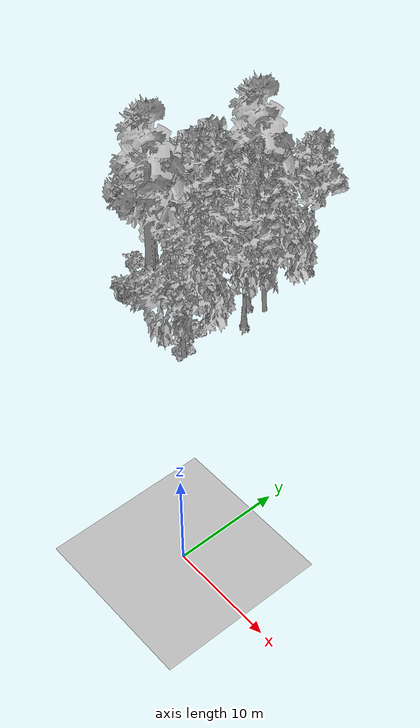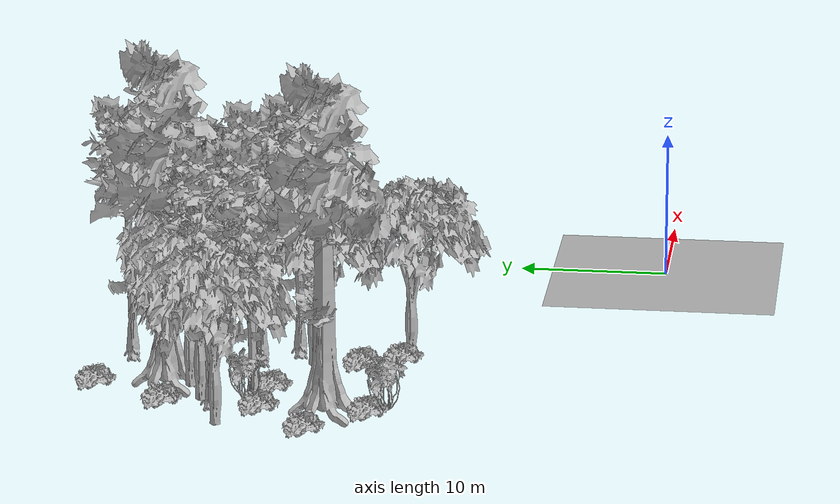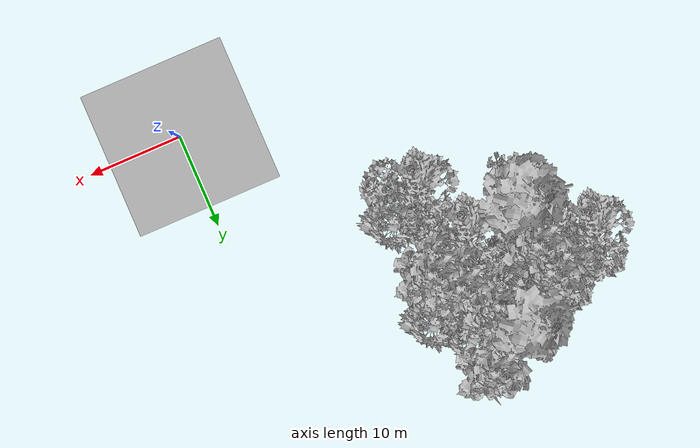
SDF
<sdf version="1.7">
 <world name="default">
  <model name="ground_plane">
   <static>1</static>
   <link name="link">
    <collision name="collision">
     <geometry><plane><normal>0 0 1</normal><size>70 70</size></plane></geometry>
     <surface><contact><ode><min_depth>0.01</min_depth><max_vel>0</max_vel></ode></contact></surface>
    </collision>
    <visual name="grass">
     <cast_shadows>0</cast_shadows>
     <geometry>
      <mesh>
       <scale>0.29000000000000004 0.29000000000000004 0.1</scale>
       <uri>file://grass_plane/meshes/grass_plane.dae</uri>
      </mesh>
     </geometry>
    </visual>
   </link>
  </model>
  <model name="Tree 2">
   <static>1</static>
   <pose>-17.93707764458719 22.777348619275365 0 1.57079 -0 0</pose>
   <link name="link">
    <collision name="collision">
     <geometry><mesh><scale>5 5 5</scale><uri>model://tree_9/meshes/tree_9.obj</uri></mesh></geometry>
    </collision>
    <visual name="visual">
     <geometry><mesh><scale>5 5 5</scale><uri>model://tree_9/meshes/tree_9.obj</uri></mesh></geometry>
    </visual>
   </link>
  </model>
  <model name="Tree 10">
   <static>1</static>
   <pose>-22.98953939201972 28.32693373725268 0 1.57079 -0 0</pose>
   <link name="link">
    <collision name="collision">
     <geometry><mesh><scale>5 5 5</scale><uri>model://tree_9/meshes/tree_9.obj</uri></mesh></geometry>
    </collision>
    <visual name="visual">
     <geometry><mesh><scale>5 5 5</scale><uri>model://tree_9/meshes/tree_9.obj</uri></mesh></geometry>
    </visual>
   </link>
  </model>
  <model name="Tree 19">
   <static>1</static>
   <pose>-24.71759503659493 30.340612021145517 0 1.57079 -0 0</pose>
   <link name="link">
    <collision name="collision">
     <geometry><mesh><scale>5 5 5</scale><uri>model://tree_4/meshes/tree_4.obj</uri></mesh></geometry>
    </collision>
    <visual name="visual">
     <geometry><mesh><scale>5 5 5</scale><uri>model://tree_4/meshes/tree_4.obj</uri></mesh></geometry>
    </visual>
   </link>
  </model>
  <model name="Tree 47">
   <static>1</static>
   <pose>-21.384829965945492 28.53131384593688 0 1.57079 -0 0</pose>
   <link name="link">
    <collision name="collision">
     <geometry><mesh><scale>5 5 5</scale><uri>model://tree_2/meshes/tree_2.obj</uri></mesh></geometry>
    </collision>
    <visual name="visual">
     <geometry><mesh><scale>5 5 5</scale><uri>model://tree_2/meshes/tree_2.obj</uri></mesh></geometry>
    </visual>
   </link>
  </model>
  <model name="Tree 86">
   <static>1</static>
   <pose>-26.118135639731616 28.59913634437875 0 1.57079 -0 0</pose>
   <link name="link">
    <collision name="collision">
     <geometry><mesh><scale>5 5 5</scale><uri>model://tree_2/meshes/tree_2.obj</uri></mesh></geometry>
    </collision>
    <visual name="visual">
     <geometry><mesh><scale>5 5 5</scale><uri>model://tree_2/meshes/tree_2.obj</uri></mesh></geometry>
    </visual>
   </link>
  </model>
  <model name="Tree 88">
   <static>1</static>
   <pose>-28.104582553090857 24.215981454329196 0 1.57079 -0 0</pose>
   <link name="link">
    <collision name="collision">
     <geometry><mesh><scale>5 5 5</scale><uri>model://tree_9/meshes/tree_9.obj</uri></mesh></geometry>
    </collision>
    <visual name="visual">
     <geometry><mesh><scale>5 5 5</scale><uri>model://tree_9/meshes/tree_9.obj</uri></mesh></geometry>
    </visual>
   </link>
  </model>
  <model name="Tree 92">
   <static>1</static>
   <pose>-28.23565608901808 27.005149878652148 0 1.57079 -0 0</pose>
   <link name="link">
    <collision name="collision">
     <geometry><mesh><scale>5 5 5</scale><uri>model://tree_9/meshes/tree_9.obj</uri></mesh></geometry>
    </collision>
    <visual name="visual">
     <geometry><mesh><scale>5 5 5</scale><uri>model://tree_9/meshes/tree_9.obj</uri></mesh></geometry>
    </visual>
   </link>
  </model>
  <model name="Tree 101">
   <static>1</static>
   <pose>-22.542150173858634 28.0002652658699 0 1.57079 -0 0</pose>
   <link name="link">
    <collision name="collision">
     <geometry><mesh><scale>5 5 5</scale><uri>model://tree_9/meshes/tree_9.obj</uri></mesh></geometry>
    </collision>
    <visual name="visual">
     <geometry><mesh><scale>5 5 5</scale><uri>model://tree_9/meshes/tree_9.obj</uri></mesh></geometry>
    </visual>
   </link>
  </model>
  <model name="Tree 117">
   <static>1</static>
   <pose>-21.339151955163654 21.356797105515135 0 1.57079 -0 0</pose>
   <link name="link">
    <collision name="collision">
     <geometry><mesh><scale>5 5 5</scale><uri>model://tree_2/meshes/tree_2.obj</uri></mesh></geometry>
    </collision>
    <visual name="visual">
     <geometry><mesh><scale>5 5 5</scale><uri>model://tree_2/meshes/tree_2.obj</uri></mesh></geometry>
    </visual>
   </link>
  </model>
  <model name="Tree 141">
   <static>1</static>
   <pose>-18.41906962036646 25.847872470304367 0 1.57079 -0 0</pose>
   <link name="link">
    <collision name="collision">
     <geometry><mesh><scale>5 5 5</scale><uri>model://tree_2/meshes/tree_2.obj</uri></mesh></geometry>
    </collision>
    <visual name="visual">
     <geometry><mesh><scale>5 5 5</scale><uri>model://tree_2/meshes/tree_2.obj</uri></mesh></geometry>
    </visual>
   </link>
  </model>
  <model name="Tree 143">
   <static>1</static>
   <pose>-19.714417248176826 33.604616361394804 0 1.57079 -0 0</pose>
   <link name="link">
    <collision name="collision">
     <geometry><mesh><scale>5 5 5</scale><uri>model://tree_9/meshes/tree_9.obj</uri></mesh></geometry>
    </collision>
    <visual name="visual">
     <geometry><mesh><scale>5 5 5</scale><uri>model://tree_9/meshes/tree_9.obj</uri></mesh></geometry>
    </visual>
   </link>
  </model>
  <model name="Tree 147">
   <static>1</static>
   <pose>-32.793482996314566 25.84687538786872 0 1.57079 -0 0</pose>
   <link name="link">
    <collision name="collision">
     <geometry><mesh><scale>5 5 5</scale><uri>model://tree_2/meshes/tree_2.obj</uri></mesh></geometry>
    </collision>
    <visual name="visual">
     <geometry><mesh><scale>5 5 5</scale><uri>model://tree_2/meshes/tree_2.obj</uri></mesh></geometry>
    </visual>
   </link>
  </model>
  <model name="Tree 170">
   <static>1</static>
   <pose>-28.530520965556615 27.523187434017572 0 1.57079 -0 0</pose>
   <link name="link">
    <collision name="collision">
     <geometry><mesh><scale>5 5 5</scale><uri>model://tree_2/meshes/tree_2.obj</uri></mesh></geometry>
    </collision>
    <visual name="visual">
     <geometry><mesh><scale>5 5 5</scale><uri>model://tree_2/meshes/tree_2.obj</uri></mesh></geometry>
    </visual>
   </link>
  </model>
  <model name="Tree 203">
   <static>1</static>
   <pose>-18.64307677617183 15.357441950081338 0 1.57079 -0 0</pose>
   <link name="link">
    <collision name="collision">
     <geometry><mesh><scale>5 5 5</scale><uri>model://tree_2/meshes/tree_2.obj</uri></mesh></geometry>
    </collision>
    <visual name="visual">
     <geometry><mesh><scale>5 5 5</scale><uri>model://tree_2/meshes/tree_2.obj</uri></mesh></geometry>
    </visual>
   </link>
  </model>
  <model name="Tree 207">
   <static>1</static>
   <pose>-19.857202393766165 24.997490572496915 0 1.57079 -0 0</pose>
   <link name="link">
    <collision name="collision">
     <geometry><mesh><scale>5 5 5</scale><uri>model://tree_9/meshes/tree_9.obj</uri></mesh></geometry>
    </collision>
    <visual name="visual">
     <geometry><mesh><scale>5 5 5</scale><uri>model://tree_9/meshes/tree_9.obj</uri></mesh></geometry>
    </visual>
   </link>
  </model>
  <model name="Tree 227">
   <static>1</static>
   <pose>-28.791225338494737 19.52128708060755 0 1.57079 -0 0</pose>
   <link name="link">
    <collision name="collision">
     <geometry><mesh><scale>5 5 5</scale><uri>model://tree_4/meshes/tree_4.obj</uri></mesh></geometry>
    </collision>
    <visual name="visual">
     <geometry><mesh><scale>5 5 5</scale><uri>model://tree_4/meshes/tree_4.obj</uri></mesh></geometry>
    </visual>
   </link>
  </model>
  <model name="Bush 0">
   <static>1</static>
   <pose>-25.9839728071737 34.8435579533206 0 1.57079 -0 0</pose>
   <link name="link">
    <collision name="collision">
     <geometry><mesh><scale>2 2 2</scale><uri>model://bush_2/meshes/bush_2.obj</uri></mesh></geometry>
    </collision>
    <visual name="visual">
     <geometry><mesh><scale>5 5 5</scale><uri>model://bush_2/meshes/bush_2.obj</uri></mesh></geometry>
    </visual>
   </link>
  </model>
  <model name="Bush 2">
   <static>1</static>
   <pose>-28.88197566760691 29.990762699969267 0 1.57079 -0 0</pose>
   <link name="link">
    <collision name="collision">
     <geometry><mesh><scale>2 2 2</scale><uri>model://bush_2/meshes/bush_2.obj</uri></mesh></geometry>
    </collision>
    <visual name="visual">
     <geometry><mesh><scale>5 5 5</scale><uri>model://bush_2/meshes/bush_2.obj</uri></mesh></geometry>
    </visual>
   </link>
  </model>
  <model name="Bush 8">
   <static>1</static>
   <pose>-19.485024495906373 15.781370845274658 0 1.57079 -0 0</pose>
   <link name="link">
    <collision name="collision">
     <geometry><mesh><scale>2 2 2</scale><uri>model://bush_2/meshes/bush_2.obj</uri></mesh></geometry>
    </collision>
    <visual name="visual">
     <geometry><mesh><scale>5 5 5</scale><uri>model://bush_2/meshes/bush_2.obj</uri></mesh></geometry>
    </visual>
   </link>
  </model>
  <model name="Bush 13">
   <static>1</static>
   <pose>-29.61148625348517 16.732022573516495 0 1.57079 -0 0</pose>
   <link name="link">
    <collision name="collision">
     <geometry><mesh><scale>2 2 2</scale><uri>model://bush_2/meshes/bush_2.obj</uri></mesh></geometry>
    </collision>
    <visual name="visual">
     <geometry><mesh><scale>5 5 5</scale><uri>model://bush_2/meshes/bush_2.obj</uri></mesh></geometry>
    </visual>
   </link>
  </model>
  <model name="Bush 36">
   <static>1</static>
   <pose>-29.396606073740607 23.691116621793142 0 1.57079 -0 0</pose>
   <link name="link">
    <collision name="collision">
     <geometry><mesh><scale>2 2 2</scale><uri>model://bush_2/meshes/bush_2.obj</uri></mesh></geometry>
    </collision>
    <visual name="visual">
     <geometry><mesh><scale>5 5 5</scale><uri>model://bush_2/meshes/bush_2.obj</uri></mesh></geometry>
    </visual>
   </link>
  </model>
  <model name="Bush 37">
   <static>1</static>
   <pose>-28.00527847256146 24.61752532781724 0 1.57079 -0 0</pose>
   <link name="link">
    <collision name="collision">
     <geometry><mesh><scale>2 2 2</scale><uri>model://bush_4/meshes/bush_4.obj</uri></mesh></geometry>
    </collision>
    <visual name="visual">
     <geometry><mesh><scale>5 5 5</scale><uri>model://bush_4/meshes/bush_4.obj</uri></mesh></geometry>
    </visual>
   </link>
  </model>
  <model name="Bush 48">
   <static>1</static>
   <pose>-32.85685072515067 20.291736711970202 0 1.57079 -0 0</pose>
   <link name="link">
    <collision name="collision">
     <geometry><mesh><scale>2 2 2</scale><uri>model://bush_2/meshes/bush_2.obj</uri></mesh></geometry>
    </collision>
    <visual name="visual">
     <geometry><mesh><scale>5 5 5</scale><uri>model://bush_2/meshes/bush_2.obj</uri></mesh></geometry>
    </visual>
   </link>
  </model>
  <model name="Bush 56">
   <static>1</static>
   <pose>-28.838983492488964 15.621563700505 0 1.57079 -0 0</pose>
   <link name="link">
    <collision name="collision">
     <geometry><mesh><scale>2 2 2</scale><uri>model://bush_4/meshes/bush_4.obj</uri></mesh></geometry>
    </collision>
    <visual name="visual">
     <geometry><mesh><scale>5 5 5</scale><uri>model://bush_4/meshes/bush_4.obj</uri></mesh></geometry>
    </visual>
   </link>
  </model>
  <model name="Bush 57">
   <static>1</static>
   <pose>-20.69521010727027 18.273280827230856 0 1.57079 -0 0</pose>
   <link name="link">
    <collision name="collision">
     <geometry><mesh><scale>2 2 2</scale><uri>model://bush_2/meshes/bush_2.obj</uri></mesh></geometry>
    </collision>
    <visual name="visual">
     <geometry><mesh><scale>5 5 5</scale><uri>model://bush_2/meshes/bush_2.obj</uri></mesh></geometry>
    </visual>
   </link>
  </model>
  <model name="Bush 58">
   <static>1</static>
   <pose>-25.71961251781348 23.42433293407079 0 1.57079 -0 0</pose>
   <link name="link">
    <collision name="collision">
     <geometry><mesh><scale>2 2 2</scale><uri>model://bush_2/meshes/bush_2.obj</uri></mesh></geometry>
    </collision>
    <visual name="visual">
     <geometry><mesh><scale>5 5 5</scale><uri>model://bush_2/meshes/bush_2.obj</uri></mesh></geometry>
    </visual>
   </link>
  </model>
 </world>
</sdf>
